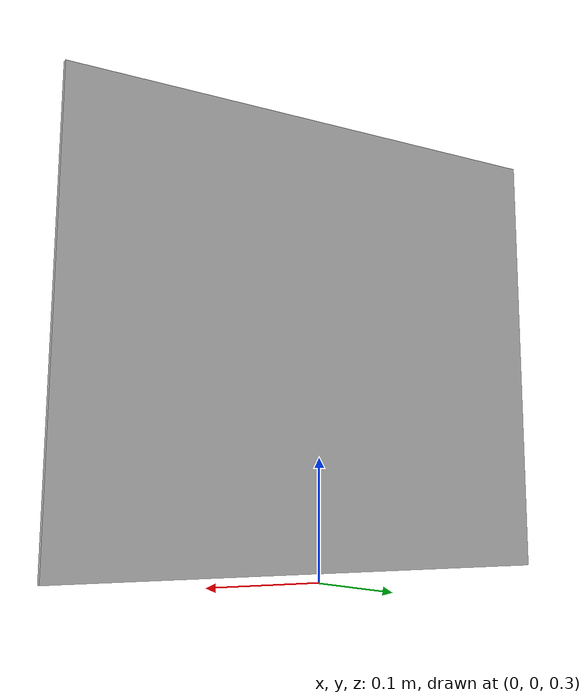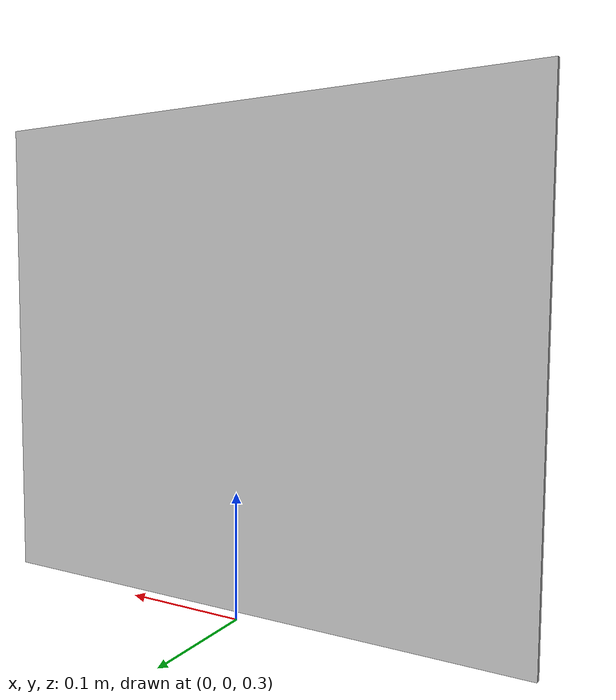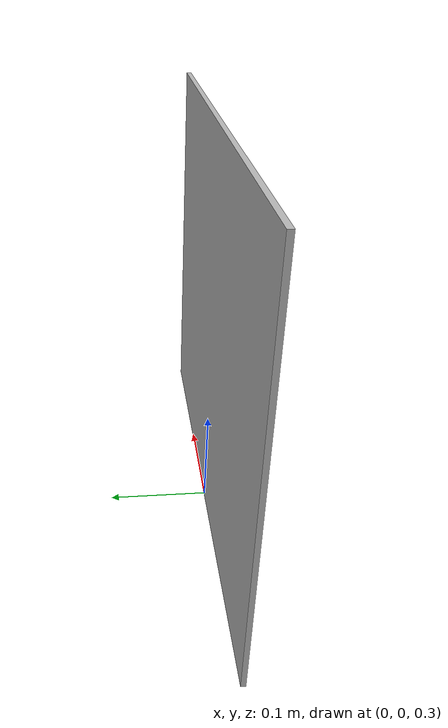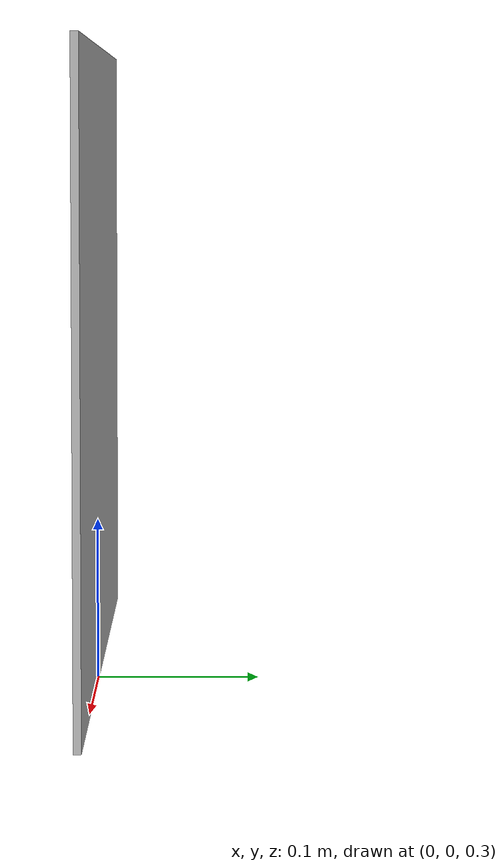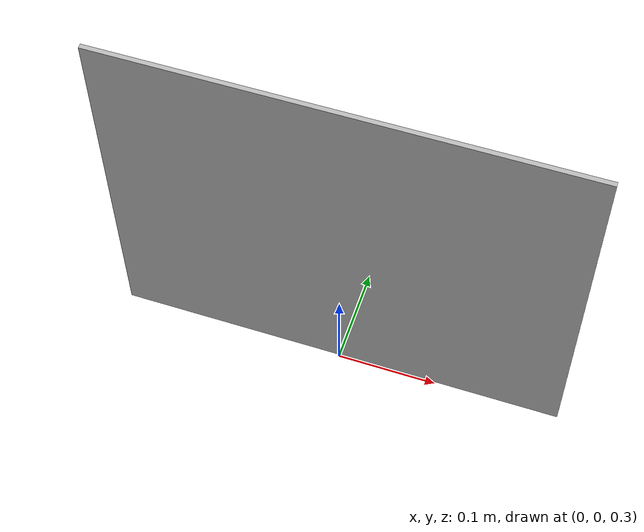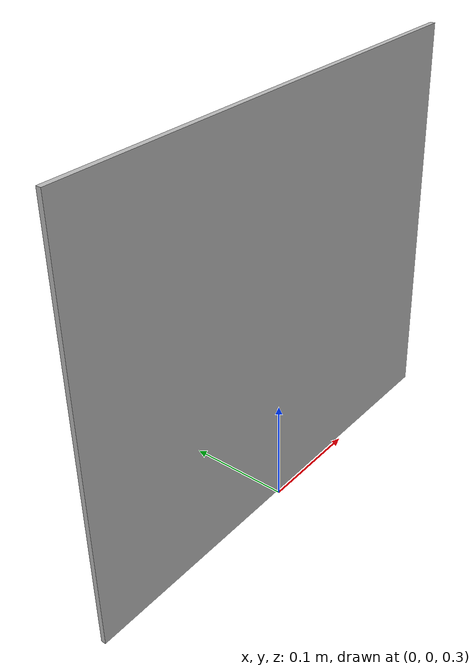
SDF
<?xml version="1.0" ?>
<sdf version="1.5">
  <model name="task_2_gif">
    <static>true</static>
    <pose> 0 0 0.5 0 0 0 </pose>
    <link name="link">
      <visual name="visual">
        <geometry>
          <box>
            <size>0.451 0.0045 0.3849</size>
          </box>
        </geometry>
        <material>
          <script>
            <uri>model://task_2_gif/materials/scripts</uri>
            <uri>model://task_2_gif/materials/textures</uri>
            <name>Task_2_gif/Tex</name>
          </script>
        </material>
      </visual>
    </link>
  </model>
</sdf>
